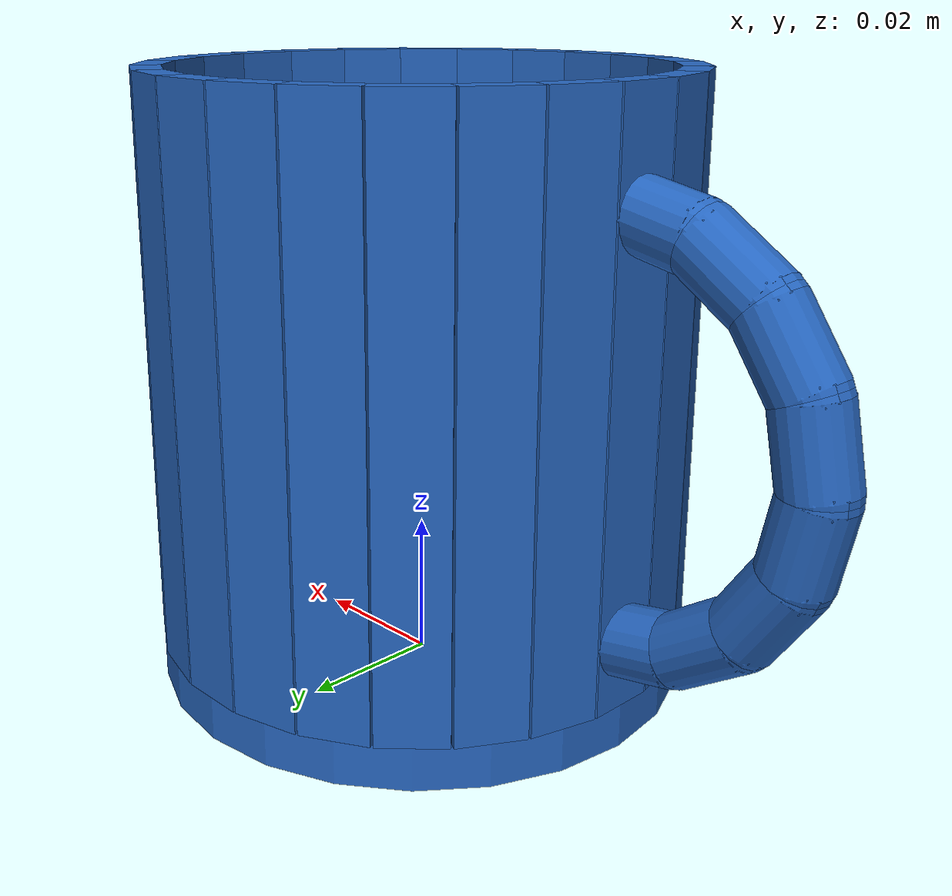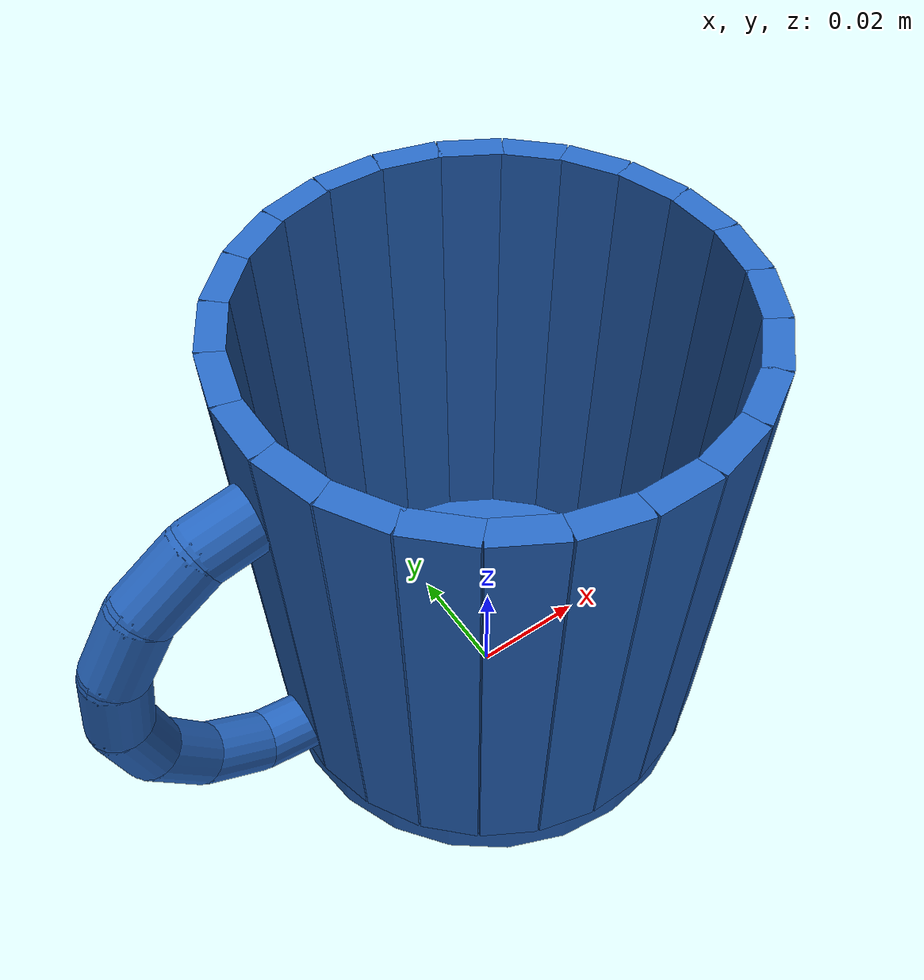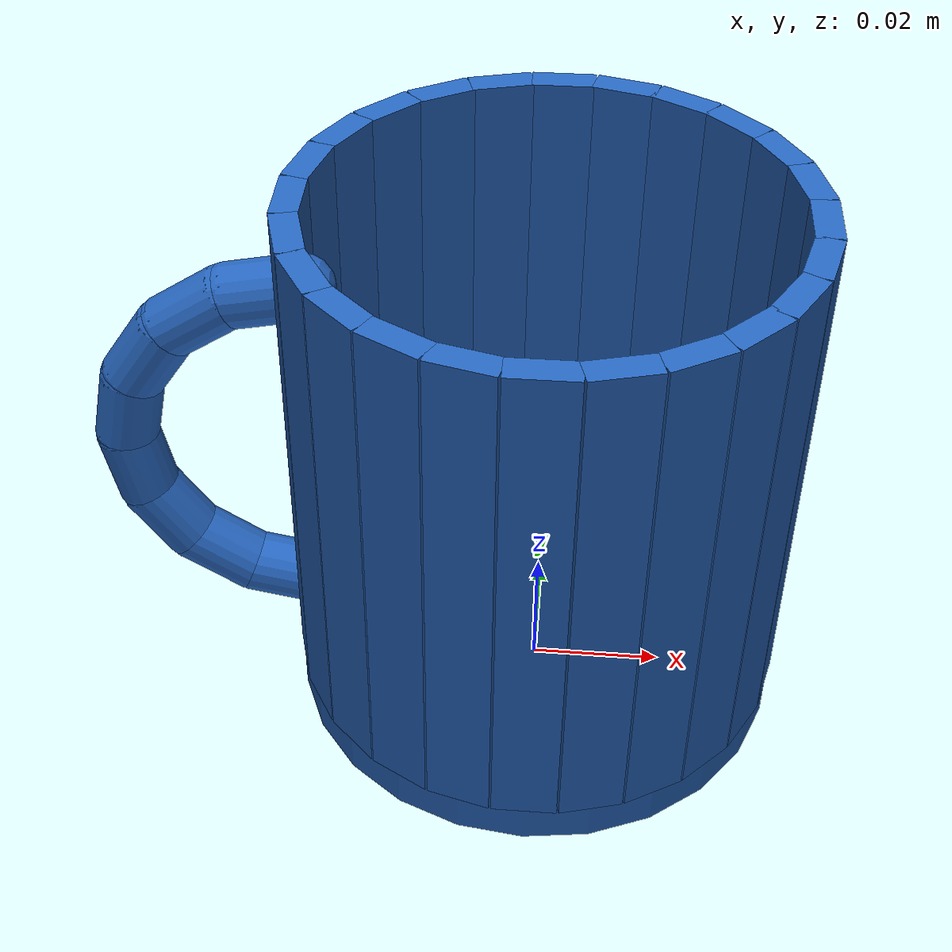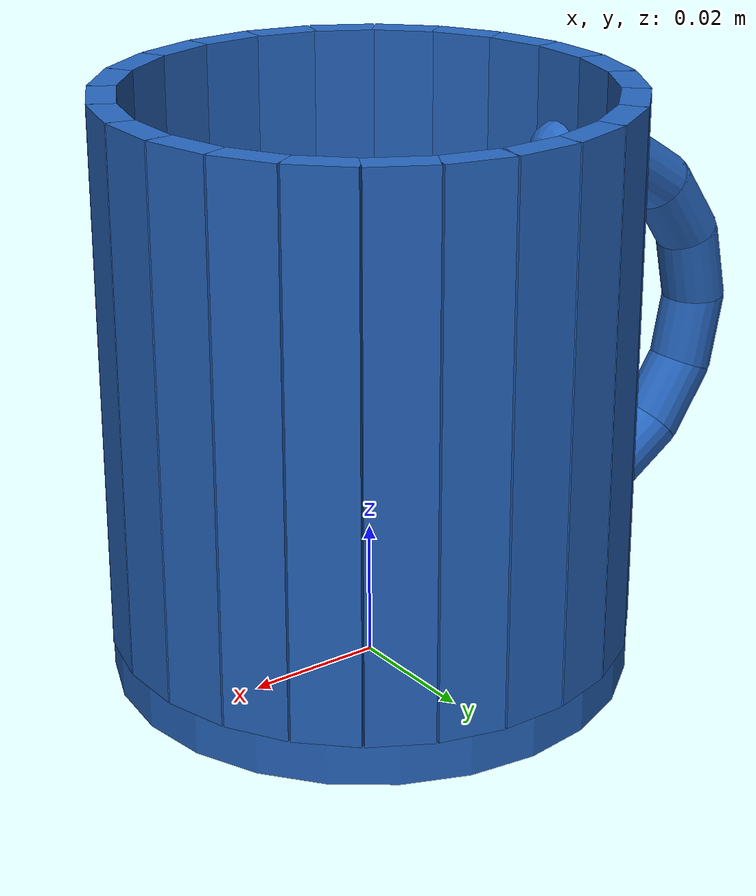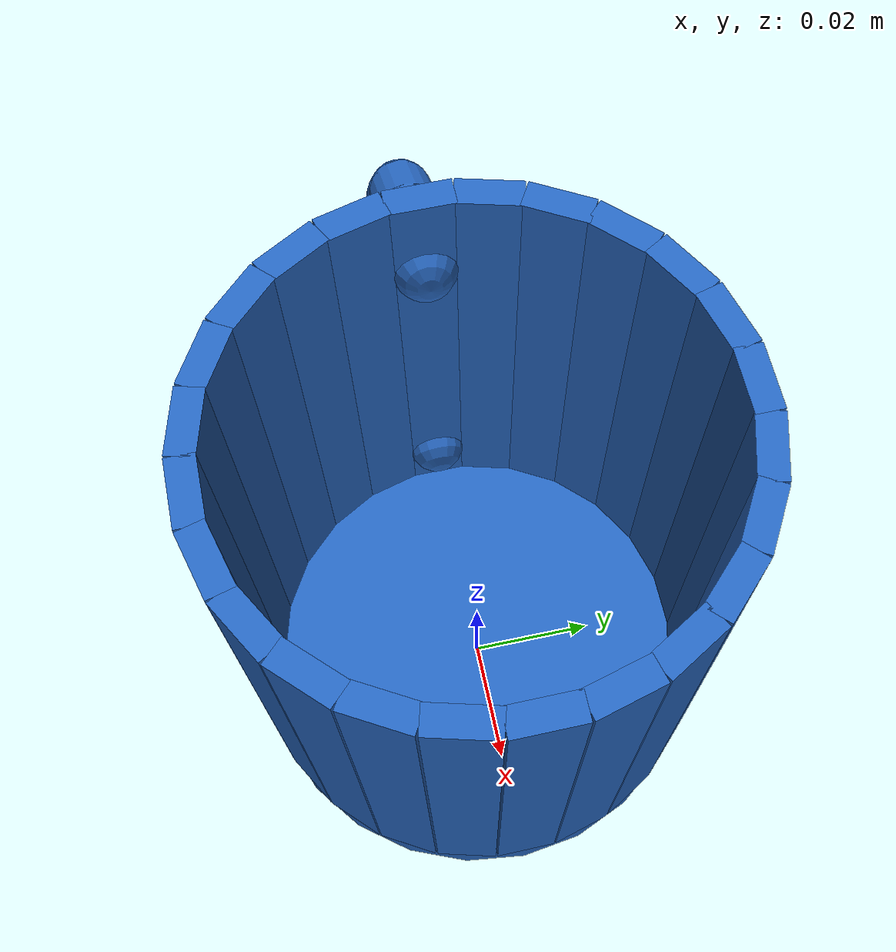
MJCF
<mujoco model="cup_blue">

  <default>
    <default class="cup">
      <geom condim="4" friction="1.2 0.05 0.001" solref="0.01 1" density="2400" rgba="0.15 0.40 0.75 1"/>
    </default>
  </default>

  <worldbody>
    <body name="root">
      <freejoint name="free"/>
      <geom name="base" class="cup" type="cylinder"
            pos="+0.00000 +0.00000 +0.00300" size="+0.03750 +0.00300"/>

      <!-- Ring wall. -->
      <geom class="cup" type="box" pos="+0.03550 +0.00000 +0.04550" quat="+1.000000 +0.000000 +0.000000 +0.000000" size="+0.00200 +0.00477 +0.03950"/>
      <geom class="cup" type="box" pos="+0.03429 +0.00919 +0.04550" quat="+0.991445 +0.000000 +0.000000 +0.130526" size="+0.00200 +0.00477 +0.03950"/>
      <geom class="cup" type="box" pos="+0.03074 +0.01775 +0.04550" quat="+0.965926 +0.000000 +0.000000 +0.258819" size="+0.00200 +0.00477 +0.03950"/>
      <geom class="cup" type="box" pos="+0.02510 +0.02510 +0.04550" quat="+0.923880 +0.000000 +0.000000 +0.382683" size="+0.00200 +0.00477 +0.03950"/>
      <geom class="cup" type="box" pos="+0.01775 +0.03074 +0.04550" quat="+0.866025 +0.000000 +0.000000 +0.500000" size="+0.00200 +0.00477 +0.03950"/>
      <geom class="cup" type="box" pos="+0.00919 +0.03429 +0.04550" quat="+0.793353 +0.000000 +0.000000 +0.608761" size="+0.00200 +0.00477 +0.03950"/>
      <geom class="cup" type="box" pos="+0.00000 +0.03550 +0.04550" quat="+0.707107 +0.000000 +0.000000 +0.707107" size="+0.00200 +0.00477 +0.03950"/>
      <geom class="cup" type="box" pos="-0.00919 +0.03429 +0.04550" quat="+0.608761 +0.000000 +0.000000 +0.793353" size="+0.00200 +0.00477 +0.03950"/>
      <geom class="cup" type="box" pos="-0.01775 +0.03074 +0.04550" quat="+0.500000 +0.000000 +0.000000 +0.866025" size="+0.00200 +0.00477 +0.03950"/>
      <geom class="cup" type="box" pos="-0.02510 +0.02510 +0.04550" quat="+0.382683 +0.000000 +0.000000 +0.923880" size="+0.00200 +0.00477 +0.03950"/>
      <geom class="cup" type="box" pos="-0.03074 +0.01775 +0.04550" quat="+0.258819 +0.000000 +0.000000 +0.965926" size="+0.00200 +0.00477 +0.03950"/>
      <geom class="cup" type="box" pos="-0.03429 +0.00919 +0.04550" quat="+0.130526 +0.000000 +0.000000 +0.991445" size="+0.00200 +0.00477 +0.03950"/>
      <geom class="cup" type="box" pos="-0.03550 +0.00000 +0.04550" quat="+0.000000 +0.000000 +0.000000 +1.000000" size="+0.00200 +0.00477 +0.03950"/>
      <geom class="cup" type="box" pos="-0.03429 -0.00919 +0.04550" quat="-0.130526 +0.000000 +0.000000 +0.991445" size="+0.00200 +0.00477 +0.03950"/>
      <geom class="cup" type="box" pos="-0.03074 -0.01775 +0.04550" quat="-0.258819 +0.000000 +0.000000 +0.965926" size="+0.00200 +0.00477 +0.03950"/>
      <geom class="cup" type="box" pos="-0.02510 -0.02510 +0.04550" quat="-0.382683 +0.000000 +0.000000 +0.923880" size="+0.00200 +0.00477 +0.03950"/>
      <geom class="cup" type="box" pos="-0.01775 -0.03074 +0.04550" quat="-0.500000 +0.000000 +0.000000 +0.866025" size="+0.00200 +0.00477 +0.03950"/>
      <geom class="cup" type="box" pos="-0.00919 -0.03429 +0.04550" quat="-0.608761 +0.000000 +0.000000 +0.793353" size="+0.00200 +0.00477 +0.03950"/>
      <geom class="cup" type="box" pos="-0.00000 -0.03550 +0.04550" quat="-0.707107 +0.000000 +0.000000 +0.707107" size="+0.00200 +0.00477 +0.03950"/>
      <geom class="cup" type="box" pos="+0.00919 -0.03429 +0.04550" quat="-0.793353 +0.000000 +0.000000 +0.608761" size="+0.00200 +0.00477 +0.03950"/>
      <geom class="cup" type="box" pos="+0.01775 -0.03074 +0.04550" quat="-0.866025 +0.000000 +0.000000 +0.500000" size="+0.00200 +0.00477 +0.03950"/>
      <geom class="cup" type="box" pos="+0.02510 -0.02510 +0.04550" quat="-0.923880 +0.000000 +0.000000 +0.382683" size="+0.00200 +0.00477 +0.03950"/>
      <geom class="cup" type="box" pos="+0.03074 -0.01775 +0.04550" quat="-0.965926 +0.000000 +0.000000 +0.258819" size="+0.00200 +0.00477 +0.03950"/>
      <geom class="cup" type="box" pos="+0.03429 -0.00919 +0.04550" quat="-0.991445 +0.000000 +0.000000 +0.130526" size="+0.00200 +0.00477 +0.03950"/>

      <!-- Handle. -->
      <geom class="cup" type="capsule" fromto="-0.03450 +0.00000 +0.01480 -0.04529 +0.00000 +0.01691" size="0.00480"/>
      <geom class="cup" type="capsule" fromto="-0.04529 +0.00000 +0.01691 -0.05444 +0.00000 +0.02291" size="0.00480"/>
      <geom class="cup" type="capsule" fromto="-0.05444 +0.00000 +0.02291 -0.06055 +0.00000 +0.03190" size="0.00480"/>
      <geom class="cup" type="capsule" fromto="-0.06055 +0.00000 +0.03190 -0.06270 +0.00000 +0.04250" size="0.00480"/>
      <geom class="cup" type="capsule" fromto="-0.06270 +0.00000 +0.04250 -0.06055 +0.00000 +0.05310" size="0.00480"/>
      <geom class="cup" type="capsule" fromto="-0.06055 +0.00000 +0.05310 -0.05444 +0.00000 +0.06209" size="0.00480"/>
      <geom class="cup" type="capsule" fromto="-0.05444 +0.00000 +0.06209 -0.04529 +0.00000 +0.06809" size="0.00480"/>
      <geom class="cup" type="capsule" fromto="-0.04529 +0.00000 +0.06809 -0.03450 +0.00000 +0.07020" size="0.00480"/>
    </body>
  </worldbody>
</mujoco>
